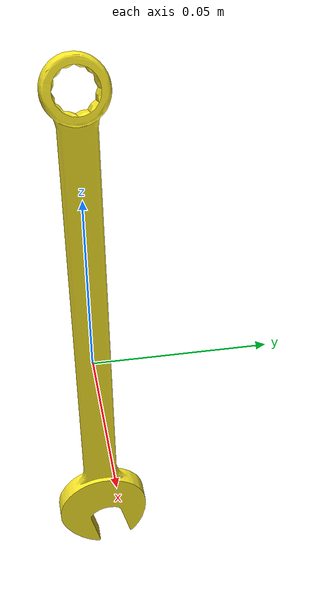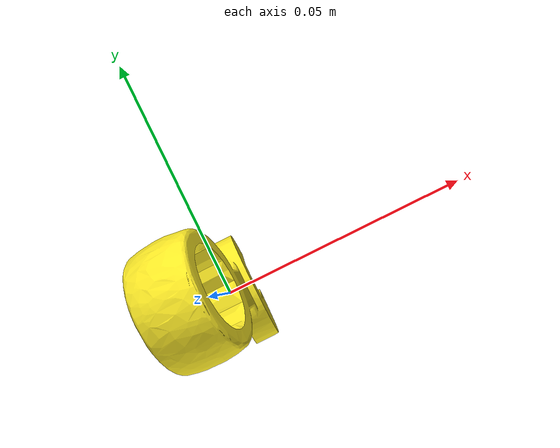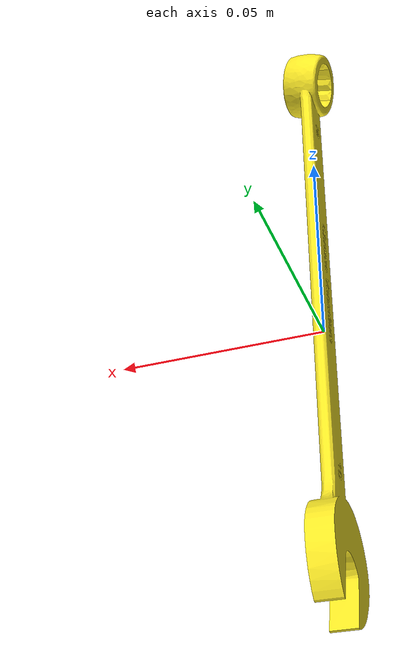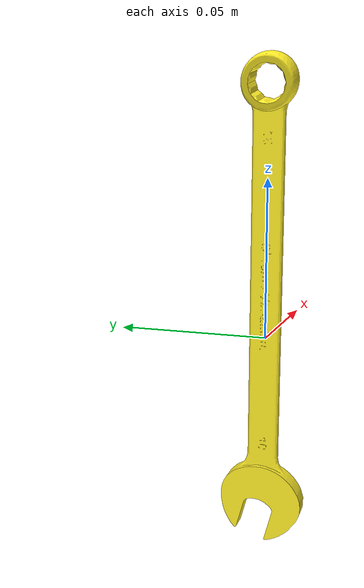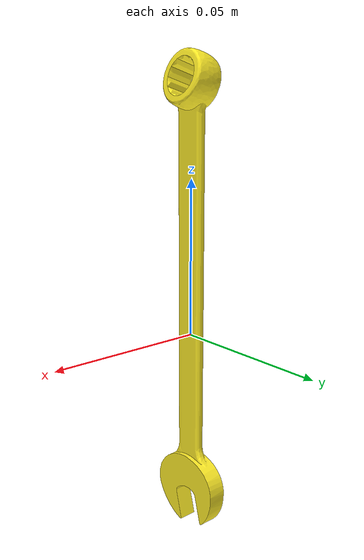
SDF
<?xml version="1.0"?>
<sdf version="1.7">
  <model name="combination_wrench_10mm_bright">
    <pose>0 0 0 0 0 0</pose>
    <static>false</static>
    <link name="link">
      <!-- link frame = tool CoM; Z = long axis (+ toward tool end), X = forward, Y = Z x X -->
      <inertial>
        <pose>0 0 0 0 0 0</pose>
        <mass>0.053132</mass>
        <inertia>
          <ixx>1.409807e-04</ixx>
          <ixy>-1.091264e-20</ixy>
          <ixz>2.593811e-23</ixz>
          <iyy>1.396569e-04</iyy>
          <iyz>1.872260e-22</iyz>
          <izz>1.600693e-06</izz>
        </inertia>
      </inertial>
      <collision name="collision">
        <geometry>
          <mesh>
            <uri>model://combination_wrench_10mm/meshes/combination_wrench_10mm.dae</uri>
          </mesh>
        </geometry>
      </collision>
      <visual name="visual">
        <geometry>
          <mesh>
            <uri>model://combination_wrench_10mm/meshes/combination_wrench_10mm.dae</uri>
          </mesh>
        </geometry>
        <material>
          <ambient>0.450 0.417 0.068 1.0</ambient>
          <diffuse>1.000 0.928 0.150 1.0</diffuse>
          <specular>0.85 0.85 0.85 1.0</specular>
          <emissive>0 0 0 1.0</emissive>
        </material>
      </visual>
    </link>
  </model>
</sdf>
